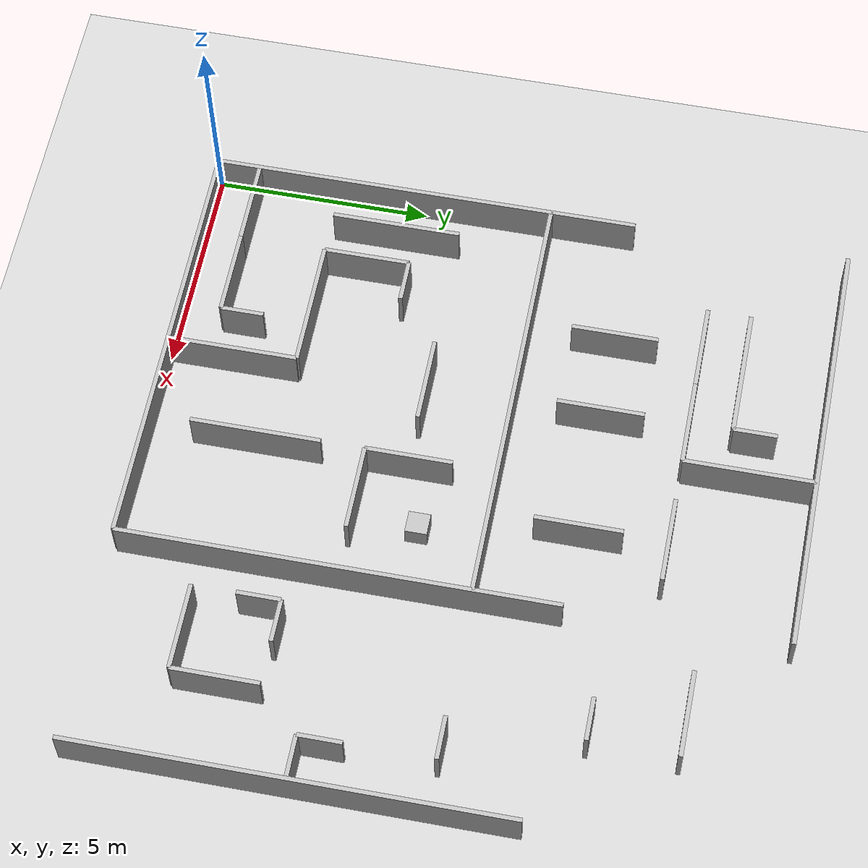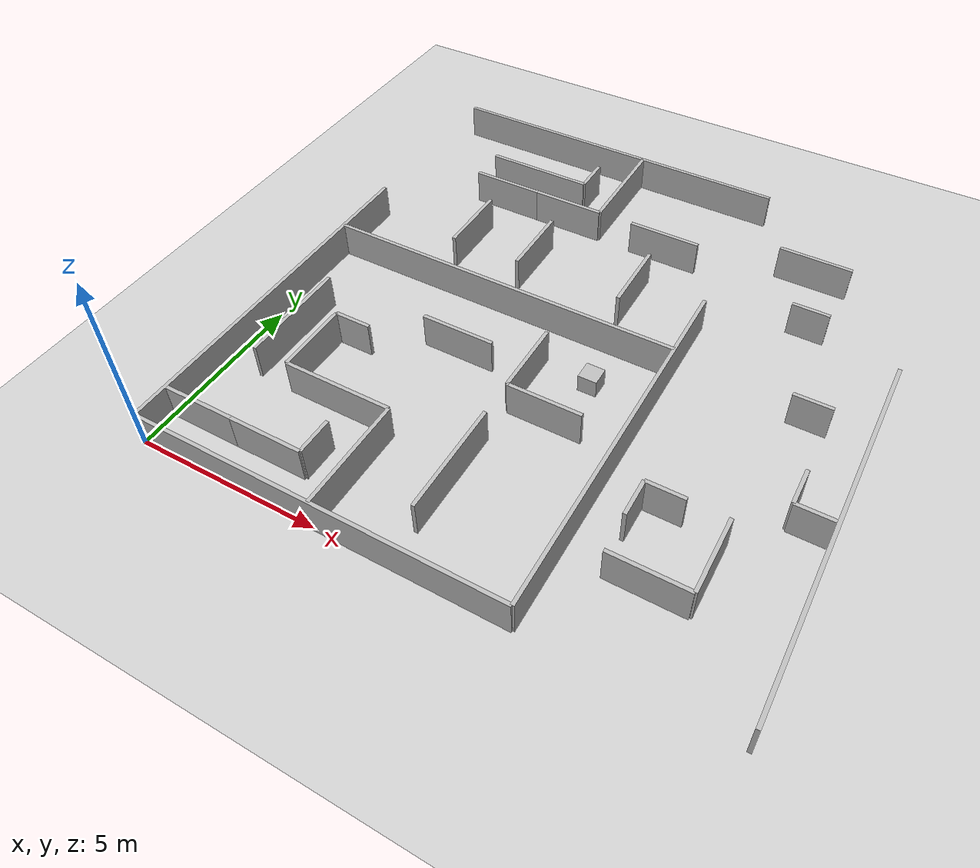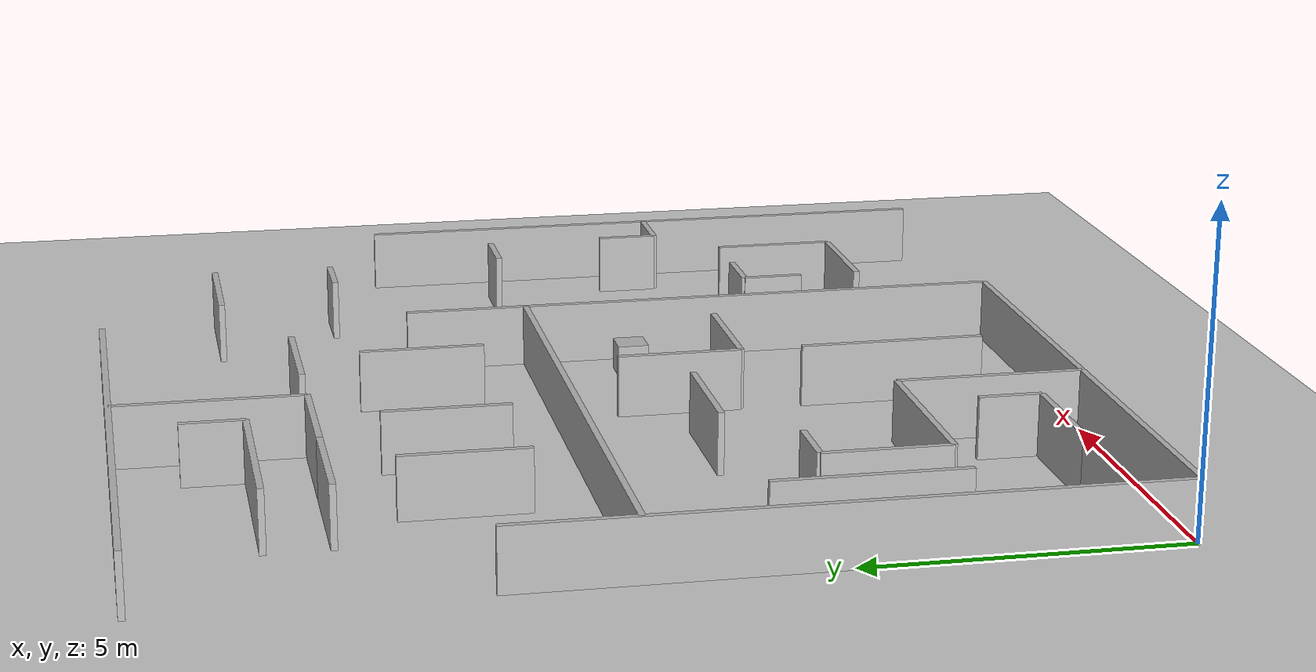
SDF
<sdf version="1.7">
 <world name="multi_robot_world">
  <include><uri>model://ground_plane</uri></include>
  <include><uri>model://sun</uri></include>
  <include><uri>model://wall_10_x</uri><name>wall_1</name><pose>5 0 0.5 0 0 0</pose></include>
  <include><uri>model://wall_10_x</uri><name>wall_3</name><pose>5 15 0.5 0 0 0</pose></include>
  <include><uri>model://wall_10_y</uri><name>wall_5</name><pose>0 5 0.5 0 0 0</pose></include>
  <include><uri>model://wall_10_y</uri><name>wall_7</name><pose>15 5 0.5 0 0 0</pose></include>
  <include><uri>model://wall_10_x</uri><name>wall_9</name><pose>5 8 0.5 0 0 0</pose></include>
  <include><uri>model://wall_10_y</uri><name>wall_10</name><pose>10 5 0.5 0 0 0</pose></include>
  <include><uri>model://wall_2_x</uri><name>wall_12</name><pose>1 1 0.5 0 0 0</pose></include>
  <include><uri>model://wall_2_x</uri><name>wall_13</name><pose>3 1 0.5 0 0 0</pose></include>
  <include><uri>model://wall_1_y</uri><name>wall_14</name><pose>4 1.5 0.5 0 0 0</pose></include>
  <include><uri>model://wall_3_y</uri><name>wall_15</name><pose>5 1.5 0.5 0 0 0</pose></include>
  <include><uri>model://wall_3_x</uri><name>wall_16</name><pose>3.5 3 0.5 0 0 0</pose></include>
  <include><uri>model://wall_2_y</uri><name>wall_17</name><pose>2 4 0.5 0 0 0</pose></include>
  <include><uri>model://wall_1_x</uri><name>wall_18</name><pose>2.5 5 0.5 0 0 0</pose></include>
  <include><uri>model://wall_3_y</uri><name>wall_19</name><pose>1 4.5 0.5 0 0 0</pose></include>
  <include><uri>model://wall_2_x</uri><name>wall_20</name><pose>5 6 0.5 0 0 0</pose></include>
  <include><uri>model://wall_3_y</uri><name>wall_21</name><pose>7 2.5 0.5 0 0 0</pose></include>
  <include><uri>model://wall_2_x</uri><name>wall_22</name><pose>8 5 0.5 0 0 0</pose></include>
  <include><uri>model://wall_2_y</uri><name>wall_23</name><pose>7 6 0.5 0 0 0</pose></include>
  <include><uri>model://wall_3_x</uri><name>wall_25</name><pose>3.5 13 0.5 0 0 0</pose></include>
  <include><uri>model://wall_1_y</uri><name>wall_26</name><pose>5 13.5 0.5 0 0 0</pose></include>
  <include><uri>model://wall_3_y</uri><name>wall_27</name><pose>6 13.5 0.5 0 0 0</pose></include>
  <include><uri>model://wall_2_x</uri><name>wall_28</name><pose>5 12 0.5 0 0 0</pose></include>
  <include><uri>model://wall_2_x</uri><name>wall_29</name><pose>3 12 0.5 0 0 0</pose></include>
  <include><uri>model://wall_2_y</uri><name>wall_30</name><pose>3 10 0.5 0 0 0</pose></include>
  <include><uri>model://wall_2_y</uri><name>wall_31</name><pose>5 10 0.5 0 0 0</pose></include>
  <include><uri>model://wall_2_y</uri><name>wall_32</name><pose>8 10 0.5 0 0 0</pose></include>
  <include><uri>model://wall_2_x</uri><name>wall_33</name><pose>8 12 0.5 0 0 0</pose></include>
  <include><uri>model://wall_2_x</uri><name>wall_34</name><pose>12 13 0.5 0 0 0</pose></include>
  <include><uri>model://wall_1_x</uri><name>wall_35</name><pose>12.5 11 0.5 0 0 0</pose></include>
  <include><uri>model://wall_1_x</uri><name>wall_37</name><pose>13.5 8 0.5 0 0 0</pose></include>
  <include><uri>model://wall_1_y</uri><name>wall_38</name><pose>14 5.5 0.5 0 0 0</pose></include>
  <include><uri>model://wall_1_x</uri><name>wall_39</name><pose>14.5 5 0.5 0 0 0</pose></include>
  <include><uri>model://wall_2_y</uri><name>wall_40</name><pose>13 3 0.5 0 0 0</pose></include>
  <include><uri>model://wall_2_x</uri><name>wall_41</name><pose>12 2 0.5 0 0 0</pose></include>
  <include><uri>model://wall_1_y</uri><name>wall_42</name><pose>11 3.5 0.5 0 0 0</pose></include>
  <include><uri>model://wall_1_x</uri><name>wall_43</name><pose>11.5 4 0.5 0 0 0</pose></include>
  <model name="target_box">
   <pose>8.5 6.5 0.5 0 0 0</pose>
   <link name="link">
    <collision name="collision"><geometry><box><size>0.5 0.5 0.5</size></box></geometry></collision>
    <visual name="visual"><geometry><box><size>0.5 0.5 0.5</size></box></geometry></visual>
   </link>
  </model>
 </world>
</sdf>

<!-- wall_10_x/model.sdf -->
<sdf version="1.7">
  <model name="wall_10_x">
   <static>true</static>
    <link name="link">
      <collision name="collision">
        <geometry>
          <box>
            <size>10 0.1 1</size>  <!-- default size -->
          </box>
        </geometry>
      </collision>
      <visual name="visual">
        <geometry>
          <box>
            <size>10 0.1 1</size>
          </box>
        </geometry>
      </visual>
    </link>
  </model>
</sdf>

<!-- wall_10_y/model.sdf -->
<sdf version="1.7">
  <model name="wall_10_y">
   <static>true</static>
    <link name="link">
      <collision name="collision">
        <geometry>
          <box>
            <size>0.1 10 1</size>  <!-- default size -->
          </box>
        </geometry>
      </collision>
      <visual name="visual">
        <geometry>
          <box>
            <size>0.1 10 1</size>
          </box>
        </geometry>
      </visual>
    </link>
  </model>
</sdf>

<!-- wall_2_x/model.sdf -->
<sdf version="1.7">
  <model name="wall_2_x">
   <static>true</static>
    <link name="link">
      <collision name="collision">
        <geometry>
          <box>
            <size>2 0.1 1</size>  <!-- default size -->
          </box>
        </geometry>
      </collision>
      <visual name="visual">
        <geometry>
          <box>
            <size>2 0.1 1</size>
          </box>
        </geometry>
      </visual>
    </link>
  </model>
</sdf>

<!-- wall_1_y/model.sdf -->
<sdf version="1.7">
  <model name="wall_1_y">
   <static>true</static>
    <link name="link">
      <collision name="collision">
        <geometry>
          <box>
            <size>0.1 1 1</size>  <!-- default size -->
          </box>
        </geometry>
      </collision>
      <visual name="visual">
        <geometry>
          <box>
            <size>0.1 1 1</size>
          </box>
        </geometry>
      </visual>
    </link>
  </model>
</sdf>

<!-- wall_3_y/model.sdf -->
<sdf version="1.7">
  <model name="wall_3_y">
   <static>true</static>
    <link name="link">
      <collision name="collision">
        <geometry>
          <box>
            <size>0.1 3 1</size>  <!-- default size -->
          </box>
        </geometry>
      </collision>
      <visual name="visual">
        <geometry>
          <box>
            <size>0.1 3 1</size>
          </box>
        </geometry>
      </visual>
    </link>
  </model>
</sdf>

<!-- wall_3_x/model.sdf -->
<sdf version="1.7">
  <model name="wall_3_x">
   <static>true</static>
    <link name="link">
      <collision name="collision">
        <geometry>
          <box>
            <size>3 0.1 1</size>  <!-- default size -->
          </box>
        </geometry>
      </collision>
      <visual name="visual">
        <geometry>
          <box>
            <size>3 0.1 1</size>
          </box>
        </geometry>
      </visual>
    </link>
  </model>
</sdf>

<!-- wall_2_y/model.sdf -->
<sdf version="1.7">
  <model name="wall_2_y">
   <static>true</static>
    <link name="link">
      <collision name="collision">
        <geometry>
          <box>
            <size>0.1 2 1</size>  <!-- default size -->
          </box>
        </geometry>
      </collision>
      <visual name="visual">
        <geometry>
          <box>
            <size>0.1 2 1</size>
          </box>
        </geometry>
      </visual>
    </link>
  </model>
</sdf>

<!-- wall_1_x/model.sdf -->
<sdf version="1.7">
  <model name="wall_1_x">
   <static>true</static>
    <link name="link">
      <collision name="collision">
        <geometry>
          <box>
            <size>1 0.1 1</size>  <!-- default size -->
          </box>
        </geometry>
      </collision>
      <visual name="visual">
        <geometry>
          <box>
            <size>1 0.1 1</size>
          </box>
        </geometry>
      </visual>
    </link>
  </model>
</sdf>
